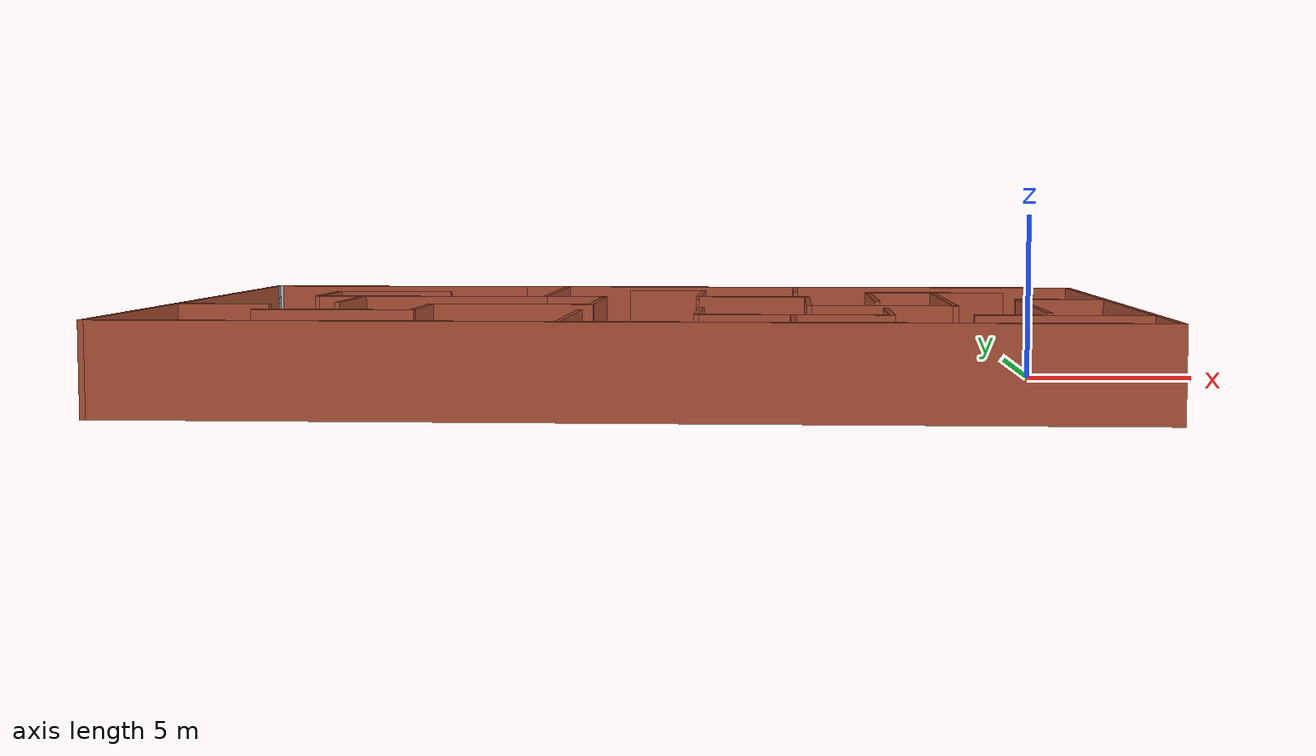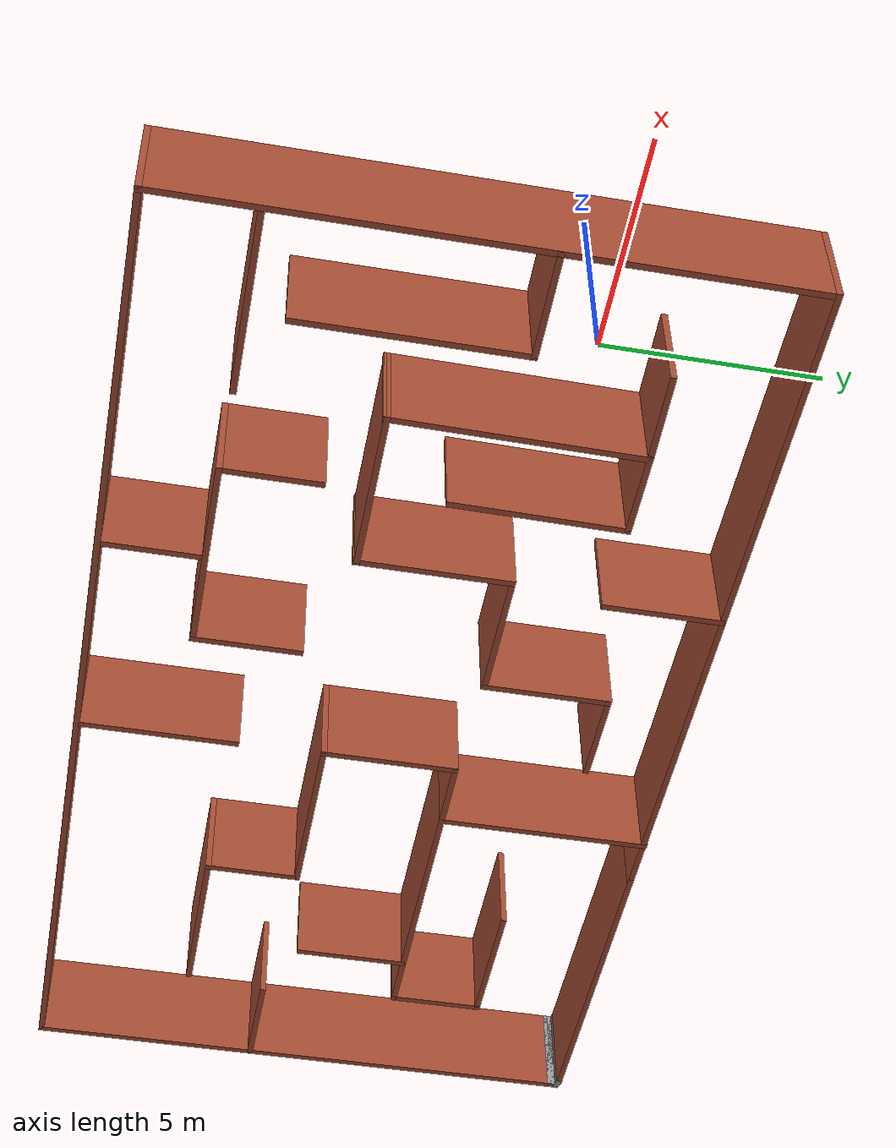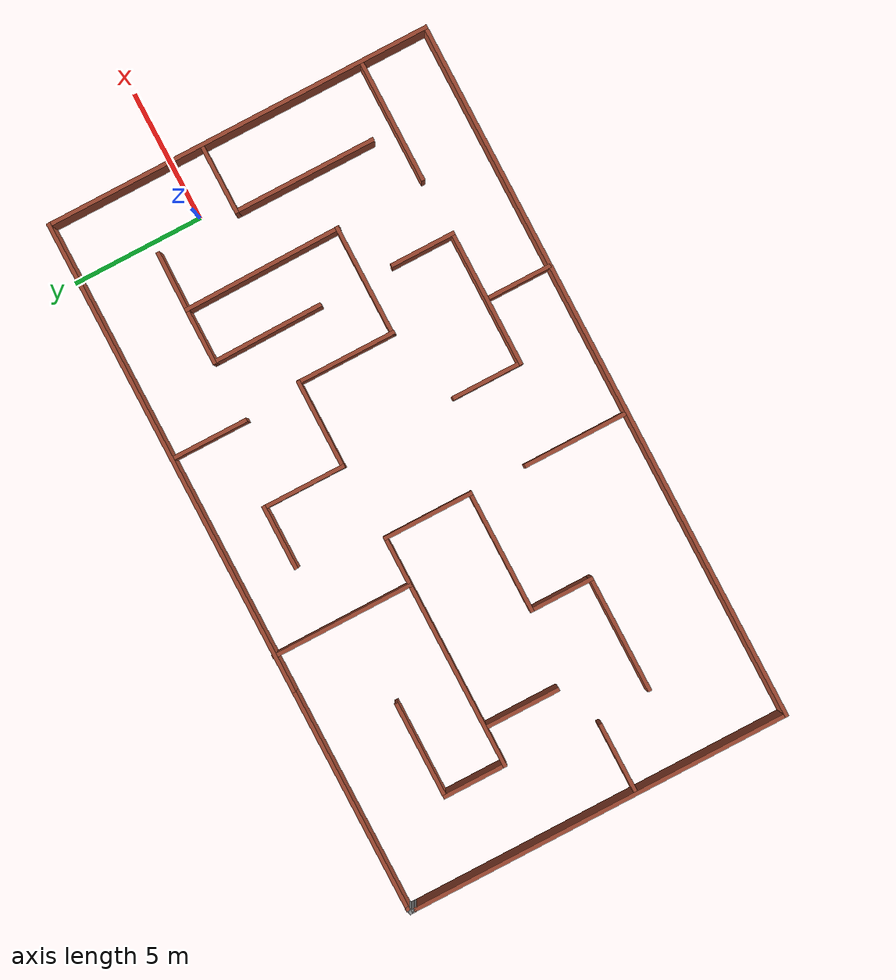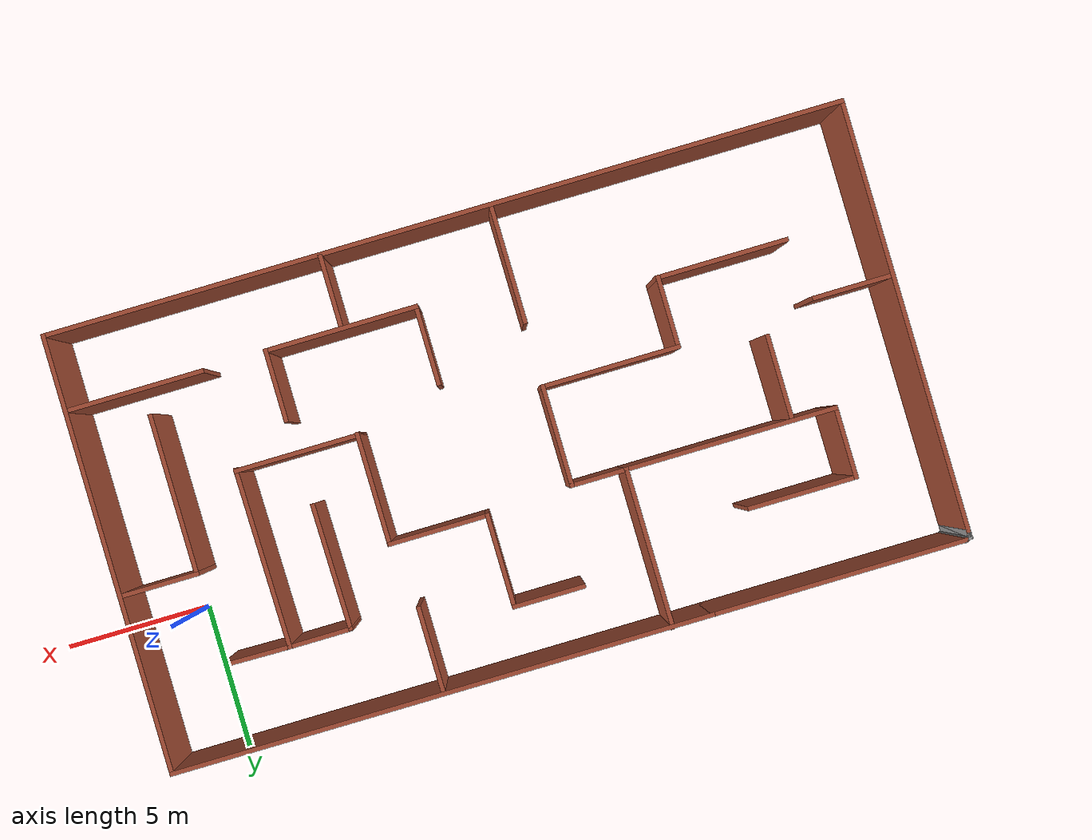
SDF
<?xml version='1.0'?>
<sdf version='1.6'>
  <model name='maze'>
    <pose frame=''>-11.5013 -2.67349 0 0 -0 0</pose>
    <link name='Wall_0'>
      <collision name='Wall_0_Collision'>
        <geometry>
          <box>
            <size>18.5 0.15 2.5</size>
          </box>
        </geometry>
        <pose frame=''>0 0 1.25 0 -0 0</pose>
      </collision>
      <visual name='Wall_0_Visual'>
        <pose frame=''>0 0 1.25 0 -0 0</pose>
        <geometry>
          <box>
            <size>18.5 0.15 2.5</size>
          </box>
        </geometry>
        <material>
          <script>
            <uri>file://media/materials/scripts/gazebo.material</uri>
            <name>Gazebo/Bricks</name>
          </script>
          <ambient>1 1 1 1</ambient>
        </material>
        <meta>
          <layer>0</layer>
        </meta>
      </visual>
      <pose frame=''>4.38493 7.41404 0 0 -0 0</pose>
    </link>
    <link name='Wall_1'>
      <collision name='Wall_1_Collision'>
        <geometry>
          <box>
            <size>15 0.15 2.5</size>
          </box>
        </geometry>
        <pose frame=''>0 0 1.25 0 -0 0</pose>
      </collision>
      <visual name='Wall_1_Visual'>
        <pose frame=''>0 0 1.25 0 -0 0</pose>
        <geometry>
          <box>
            <size>15 0.15 2.5</size>
          </box>
        </geometry>
        <material>
          <script>
            <uri>file://media/materials/scripts/gazebo.material</uri>
            <name>Gazebo/Bricks</name>
          </script>
          <ambient>1 1 1 1</ambient>
        </material>
        <meta>
          <layer>0</layer>
        </meta>
      </visual>
      <pose frame=''>13.5599 -0.010963 0 0 -0 -1.5708</pose>
    </link>
    <link name='Wall_101'>
      <collision name='Wall_101_Collision'>
        <geometry>
          <box>
            <size>2.75 0.15 2.5</size>
          </box>
        </geometry>
        <pose frame=''>0 0 1.25 0 -0 0</pose>
      </collision>
      <visual name='Wall_101_Visual'>
        <pose frame=''>0 0 1.25 0 -0 0</pose>
        <geometry>
          <box>
            <size>2.75 0.15 2.5</size>
          </box>
        </geometry>
        <material>
          <script>
            <uri>file://media/materials/scripts/gazebo.material</uri>
            <name>Gazebo/Bricks</name>
          </script>
          <ambient>1 1 1 1</ambient>
        </material>
        <meta>
          <layer>0</layer>
        </meta>
      </visual>
      <pose frame=''>12.2478 1.40189 0 0 -0 3.14159</pose>
    </link>
    <link name='Wall_102'>
      <collision name='Wall_102_Collision'>
        <geometry>
          <box>
            <size>5.5 0.15 2.5</size>
          </box>
        </geometry>
        <pose frame=''>0 0 1.25 0 -0 0</pose>
      </collision>
      <visual name='Wall_102_Visual'>
        <pose frame=''>0 0 1.25 0 -0 0</pose>
        <geometry>
          <box>
            <size>5.5 0.15 2.5</size>
          </box>
        </geometry>
        <material>
          <script>
            <uri>file://media/materials/scripts/gazebo.material</uri>
            <name>Gazebo/Bricks</name>
          </script>
          <ambient>1 1 1 1</ambient>
        </material>
        <meta>
          <layer>0</layer>
        </meta>
      </visual>
      <pose frame=''>10.9478 -1.27311 0 0 -0 -1.5708</pose>
    </link>
    <link name='Wall_104'>
      <collision name='Wall_104_Collision'>
        <geometry>
          <box>
            <size>2.5 0.15 2.5</size>
          </box>
        </geometry>
        <pose frame=''>0 0 1.25 0 -0 0</pose>
      </collision>
      <visual name='Wall_104_Visual'>
        <pose frame=''>0 0 1.25 0 -0 0</pose>
        <geometry>
          <box>
            <size>2.5 0.15 2.5</size>
          </box>
        </geometry>
        <material>
          <script>
            <uri>file://media/materials/scripts/gazebo.material</uri>
            <name>Gazebo/Bricks</name>
          </script>
          <ambient>1 1 1 1</ambient>
        </material>
        <meta>
          <layer>0</layer>
        </meta>
      </visual>
      <pose frame=''>6.74946 -3.7556 0 0 -0 -1.5708</pose>
    </link>
    <link name='Wall_105'>
      <collision name='Wall_105_Collision'>
        <geometry>
          <box>
            <size>5.25 0.15 2.5</size>
          </box>
        </geometry>
        <pose frame=''>0 0 1.25 0 -0 0</pose>
      </collision>
      <visual name='Wall_105_Visual'>
        <pose frame=''>0 0 1.25 0 -0 0</pose>
        <geometry>
          <box>
            <size>5.25 0.15 2.5</size>
          </box>
        </geometry>
        <material>
          <script>
            <uri>file://media/materials/scripts/gazebo.material</uri>
            <name>Gazebo/Bricks</name>
          </script>
          <ambient>1 1 1 1</ambient>
        </material>
        <meta>
          <layer>0</layer>
        </meta>
      </visual>
      <pose frame=''>4.19946 -4.9306 0 0 -0 3.14159</pose>
    </link>
    <link name='Wall_106'>
      <collision name='Wall_106_Collision'>
        <geometry>
          <box>
            <size>2.75 0.15 2.5</size>
          </box>
        </geometry>
        <pose frame=''>0 0 1.25 0 -0 0</pose>
      </collision>
      <visual name='Wall_106_Visual'>
        <pose frame=''>0 0 1.25 0 -0 0</pose>
        <geometry>
          <box>
            <size>2.75 0.15 2.5</size>
          </box>
        </geometry>
        <material>
          <script>
            <uri>file://media/materials/scripts/gazebo.material</uri>
            <name>Gazebo/Bricks</name>
          </script>
          <ambient>1 1 1 1</ambient>
        </material>
        <meta>
          <layer>0</layer>
        </meta>
      </visual>
      <pose frame=''>1.64946 -3.6306 0 0 -0 1.5708</pose>
    </link>
    <link name='Wall_108'>
      <collision name='Wall_108_Collision'>
        <geometry>
          <box>
            <size>2.5 0.15 2.5</size>
          </box>
        </geometry>
        <pose frame=''>0 0 1.25 0 -0 0</pose>
      </collision>
      <visual name='Wall_108_Visual'>
        <pose frame=''>0 0 1.25 0 -0 0</pose>
        <geometry>
          <box>
            <size>2.5 0.15 2.5</size>
          </box>
        </geometry>
        <material>
          <script>
            <uri>file://media/materials/scripts/gazebo.material</uri>
            <name>Gazebo/Bricks</name>
          </script>
          <ambient>1 1 1 1</ambient>
        </material>
        <meta>
          <layer>0</layer>
        </meta>
      </visual>
      <pose frame=''>4.17492 -6.18854 0 0 -0 -1.5708</pose>
    </link>
    <link name='Wall_110'>
      <collision name='Wall_110_Collision'>
        <geometry>
          <box>
            <size>4.75 0.15 2.5</size>
          </box>
        </geometry>
        <pose frame=''>0 0 1.25 0 -0 0</pose>
      </collision>
      <visual name='Wall_110_Visual'>
        <pose frame=''>0 0 1.25 0 -0 0</pose>
        <geometry>
          <box>
            <size>4.75 0.15 2.5</size>
          </box>
        </geometry>
        <material>
          <script>
            <uri>file://media/materials/scripts/gazebo.material</uri>
            <name>Gazebo/Bricks</name>
          </script>
          <ambient>1 1 1 1</ambient>
        </material>
        <meta>
          <layer>0</layer>
        </meta>
      </visual>
      <pose frame=''>11.2365 -4.88588 0 0 -0 3.14159</pose>
    </link>
    <link name='Wall_2'>
      <collision name='Wall_2_Collision'>
        <geometry>
          <box>
            <size>27.25 0.15 2.5</size>
          </box>
        </geometry>
        <pose frame=''>0 0 1.25 0 -0 0</pose>
      </collision>
      <visual name='Wall_2_Visual'>
        <pose frame=''>0 0 1.25 0 -0 0</pose>
        <geometry>
          <box>
            <size>27.25 0.15 2.5</size>
          </box>
        </geometry>
        <material>
          <script>
            <uri>file://media/materials/scripts/gazebo.material</uri>
            <name>Gazebo/Bricks</name>
          </script>
          <ambient>1 1 1 1</ambient>
        </material>
        <meta>
          <layer>0</layer>
        </meta>
      </visual>
      <pose frame=''>0.009934 -7.43596 0 0 -0 3.14159</pose>
    </link>
    <link name='Wall_3'>
      <collision name='Wall_3_Collision'>
        <geometry>
          <box>
            <size>14.75 0.15 2.5</size>
          </box>
        </geometry>
        <pose frame=''>0 0 1.25 0 -0 0</pose>
      </collision>
      <visual name='Wall_3_Visual'>
        <pose frame=''>0 0 1.25 0 -0 0</pose>
        <geometry>
          <box>
            <size>14.75 0.15 2.5</size>
          </box>
        </geometry>
        <material>
          <script>
            <uri>file://media/materials/scripts/gazebo.material</uri>
            <name>Gazebo/Bricks</name>
          </script>
          <ambient>1 1 1 1</ambient>
        </material>
        <meta>
          <layer>0</layer>
        </meta>
      </visual>
      <pose frame=''>-13.5401 -0.135963 0 0 -0 1.5708</pose>
    </link>
    <link name='Wall_4'>
      <collision name='Wall_4_Collision'>
        <geometry>
          <box>
            <size>0.25 0.15 2.5</size>
          </box>
        </geometry>
        <pose frame=''>0 0 1.25 0 -0 0</pose>
      </collision>
      <visual name='Wall_4_Visual'>
        <pose frame=''>0 0 1.25 0 -0 0</pose>
        <geometry>
          <box>
            <size>0.25 0.15 2.5</size>
          </box>
        </geometry>
        <material>
          <script>
            <uri>file://media/materials/scripts/gazebo.material</uri>
            <name>Gazebo/Grey</name>
          </script>
          <ambient>1 1 1 1</ambient>
        </material>
        <meta>
          <layer>0</layer>
        </meta>
      </visual>
      <pose frame=''>-13.5401 7.21404 0 0 -0 1.5708</pose>
    </link>
    <link name='Wall_5'>
      <collision name='Wall_5_Collision'>
        <geometry>
          <box>
            <size>0.25 0.15 2.5</size>
          </box>
        </geometry>
        <pose frame=''>0 0 1.25 0 -0 0</pose>
      </collision>
      <visual name='Wall_5_Visual'>
        <pose frame=''>0 0 1.25 0 -0 0</pose>
        <geometry>
          <box>
            <size>0.25 0.15 2.5</size>
          </box>
        </geometry>
        <material>
          <script>
            <uri>file://media/materials/scripts/gazebo.material</uri>
            <name>Gazebo/Grey</name>
          </script>
          <ambient>1 1 1 1</ambient>
        </material>
        <meta>
          <layer>0</layer>
        </meta>
      </visual>
      <pose frame=''>-13.5401 7.21404 0 0 -0 -1.5708</pose>
    </link>
    <link name='Wall_6'>
      <collision name='Wall_6_Collision'>
        <geometry>
          <box>
            <size>0.25 0.15 2.5</size>
          </box>
        </geometry>
        <pose frame=''>0 0 1.25 0 -0 0</pose>
      </collision>
      <visual name='Wall_6_Visual'>
        <pose frame=''>0 0 1.25 0 -0 0</pose>
        <geometry>
          <box>
            <size>0.25 0.15 2.5</size>
          </box>
        </geometry>
        <material>
          <script>
            <uri>file://media/materials/scripts/gazebo.material</uri>
            <name>Gazebo/Grey</name>
          </script>
          <ambient>1 1 1 1</ambient>
        </material>
        <meta>
          <layer>0</layer>
        </meta>
      </visual>
      <pose frame=''>-13.5401 7.21404 0 0 -0 1.5708</pose>
    </link>
    <link name='Wall_7'>
      <collision name='Wall_7_Collision'>
        <geometry>
          <box>
            <size>0.25 0.15 2.5</size>
          </box>
        </geometry>
        <pose frame=''>0 0 1.25 0 -0 0</pose>
      </collision>
      <visual name='Wall_7_Visual'>
        <pose frame=''>0 0 1.25 0 -0 0</pose>
        <geometry>
          <box>
            <size>0.25 0.15 2.5</size>
          </box>
        </geometry>
        <material>
          <script>
            <uri>file://media/materials/scripts/gazebo.material</uri>
            <name>Gazebo/Grey</name>
          </script>
          <ambient>1 1 1 1</ambient>
        </material>
        <meta>
          <layer>0</layer>
        </meta>
      </visual>
      <pose frame=''>-13.5401 7.31404 0 0 -0 1.5708</pose>
    </link>
    <link name='Wall_71'>
      <collision name='Wall_71_Collision'>
        <geometry>
          <box>
            <size>5.5 0.15 2.5</size>
          </box>
        </geometry>
        <pose frame=''>0 0 1.25 0 -0 0</pose>
      </collision>
      <visual name='Wall_71_Visual'>
        <pose frame=''>0 0 1.25 0 -0 0</pose>
        <geometry>
          <box>
            <size>5.5 0.15 2.5</size>
          </box>
        </geometry>
        <material>
          <script>
            <uri>file://media/materials/scripts/gazebo.material</uri>
            <name>Gazebo/Bricks</name>
          </script>
          <ambient>1 1 1 1</ambient>
        </material>
        <meta>
          <layer>0</layer>
        </meta>
      </visual>
      <pose frame=''>-3.42801 4.76096 0 0 -0 -1.5708</pose>
    </link>
    <link name='Wall_72'>
      <collision name='Wall_72_Collision'>
        <geometry>
          <box>
            <size>7.25 0.15 2.5</size>
          </box>
        </geometry>
        <pose frame=''>0 0 1.25 0 -0 0</pose>
      </collision>
      <visual name='Wall_72_Visual'>
        <pose frame=''>0 0 1.25 0 -0 0</pose>
        <geometry>
          <box>
            <size>7.25 0.15 2.5</size>
          </box>
        </geometry>
        <material>
          <script>
            <uri>file://media/materials/scripts/gazebo.material</uri>
            <name>Gazebo/Bricks</name>
          </script>
          <ambient>1 1 1 1</ambient>
        </material>
        <meta>
          <layer>0</layer>
        </meta>
      </visual>
      <pose frame=''>-6.97801 2.08596 0 0 -0 3.14159</pose>
    </link>
    <link name='Wall_73'>
      <collision name='Wall_73_Collision'>
        <geometry>
          <box>
            <size>2.5 0.15 2.5</size>
          </box>
        </geometry>
        <pose frame=''>0 0 1.25 0 -0 0</pose>
      </collision>
      <visual name='Wall_73_Visual'>
        <pose frame=''>0 0 1.25 0 -0 0</pose>
        <geometry>
          <box>
            <size>2.5 0.15 2.5</size>
          </box>
        </geometry>
        <material>
          <script>
            <uri>file://media/materials/scripts/gazebo.material</uri>
            <name>Gazebo/Bricks</name>
          </script>
          <ambient>1 1 1 1</ambient>
        </material>
        <meta>
          <layer>0</layer>
        </meta>
      </visual>
      <pose frame=''>-10.528 3.26096 0 0 -0 1.5708</pose>
    </link>
    <link name='Wall_74'>
      <collision name='Wall_74_Collision'>
        <geometry>
          <box>
            <size>3.75 0.15 2.5</size>
          </box>
        </geometry>
        <pose frame=''>0 0 1.25 0 -0 0</pose>
      </collision>
      <visual name='Wall_74_Visual'>
        <pose frame=''>0 0 1.25 0 -0 0</pose>
        <geometry>
          <box>
            <size>3.75 0.15 2.5</size>
          </box>
        </geometry>
        <material>
          <script>
            <uri>file://media/materials/scripts/gazebo.material</uri>
            <name>Gazebo/Bricks</name>
          </script>
          <ambient>1 1 1 1</ambient>
        </material>
        <meta>
          <layer>0</layer>
        </meta>
      </visual>
      <pose frame=''>-8.72801 4.43596 0 0 -0 0</pose>
    </link>
    <link name='Wall_76'>
      <collision name='Wall_76_Collision'>
        <geometry>
          <box>
            <size>2 0.15 2.5</size>
          </box>
        </geometry>
        <pose frame=''>0 0 1.25 0 -0 0</pose>
      </collision>
      <visual name='Wall_76_Visual'>
        <pose frame=''>0 0 1.25 0 -0 0</pose>
        <geometry>
          <box>
            <size>2 0.15 2.5</size>
          </box>
        </geometry>
        <material>
          <script>
            <uri>file://media/materials/scripts/gazebo.material</uri>
            <name>Gazebo/Bricks</name>
          </script>
          <ambient>1 1 1 1</ambient>
        </material>
        <meta>
          <layer>0</layer>
        </meta>
      </visual>
      <pose frame=''>-2.50301 2.08596 0 0 -0 0</pose>
    </link>
    <link name='Wall_77'>
      <collision name='Wall_77_Collision'>
        <geometry>
          <box>
            <size>3.5 0.15 2.5</size>
          </box>
        </geometry>
        <pose frame=''>0 0 1.25 0 -0 0</pose>
      </collision>
      <visual name='Wall_77_Visual'>
        <pose frame=''>0 0 1.25 0 -0 0</pose>
        <geometry>
          <box>
            <size>3.5 0.15 2.5</size>
          </box>
        </geometry>
        <material>
          <script>
            <uri>file://media/materials/scripts/gazebo.material</uri>
            <name>Gazebo/Bricks</name>
          </script>
          <ambient>1 1 1 1</ambient>
        </material>
        <meta>
          <layer>0</layer>
        </meta>
      </visual>
      <pose frame=''>-1.57801 0.410964 0 0 -0 -1.5708</pose>
    </link>
    <link name='Wall_78'>
      <collision name='Wall_78_Collision'>
        <geometry>
          <box>
            <size>4.75 0.15 2.5</size>
          </box>
        </geometry>
        <pose frame=''>0 0 1.25 0 -0 0</pose>
      </collision>
      <visual name='Wall_78_Visual'>
        <pose frame=''>0 0 1.25 0 -0 0</pose>
        <geometry>
          <box>
            <size>4.75 0.15 2.5</size>
          </box>
        </geometry>
        <material>
          <script>
            <uri>file://media/materials/scripts/gazebo.material</uri>
            <name>Gazebo/Bricks</name>
          </script>
          <ambient>1 1 1 1</ambient>
        </material>
        <meta>
          <layer>0</layer>
        </meta>
      </visual>
      <pose frame=''>-3.87801 -1.26404 0 0 -0 3.14159</pose>
    </link>
    <link name='Wall_79'>
      <collision name='Wall_79_Collision'>
        <geometry>
          <box>
            <size>2.5 0.15 2.5</size>
          </box>
        </geometry>
        <pose frame=''>0 0 1.25 0 -0 0</pose>
      </collision>
      <visual name='Wall_79_Visual'>
        <pose frame=''>0 0 1.25 0 -0 0</pose>
        <geometry>
          <box>
            <size>2.5 0.15 2.5</size>
          </box>
        </geometry>
        <material>
          <script>
            <uri>file://media/materials/scripts/gazebo.material</uri>
            <name>Gazebo/Bricks</name>
          </script>
          <ambient>1 1 1 1</ambient>
        </material>
        <meta>
          <layer>0</layer>
        </meta>
      </visual>
      <pose frame=''>-6.17801 -2.43904 0 0 -0 -1.5708</pose>
    </link>
    <link name='Wall_8'>
      <collision name='Wall_8_Collision'>
        <geometry>
          <box>
            <size>0.308114 0.15 2.5</size>
          </box>
        </geometry>
        <pose frame=''>0 0 1.25 0 -0 0</pose>
      </collision>
      <visual name='Wall_8_Visual'>
        <pose frame=''>0 0 1.25 0 -0 0</pose>
        <geometry>
          <box>
            <size>0.308114 0.15 2.5</size>
          </box>
        </geometry>
        <material>
          <script>
            <uri>file://media/materials/scripts/gazebo.material</uri>
            <name>Gazebo/Grey</name>
          </script>
          <ambient>1 1 1 1</ambient>
        </material>
        <meta>
          <layer>0</layer>
        </meta>
      </visual>
      <pose frame=''>-13.4651 7.38904 0 0 -0 0.321751</pose>
    </link>
    <link name='Wall_80'>
      <collision name='Wall_80_Collision'>
        <geometry>
          <box>
            <size>4.5 0.15 2.5</size>
          </box>
        </geometry>
        <pose frame=''>0 0 1.25 0 -0 0</pose>
      </collision>
      <visual name='Wall_80_Visual'>
        <pose frame=''>0 0 1.25 0 -0 0</pose>
        <geometry>
          <box>
            <size>4.5 0.15 2.5</size>
          </box>
        </geometry>
        <material>
          <script>
            <uri>file://media/materials/scripts/gazebo.material</uri>
            <name>Gazebo/Bricks</name>
          </script>
          <ambient>1 1 1 1</ambient>
        </material>
        <meta>
          <layer>0</layer>
        </meta>
      </visual>
      <pose frame=''>-8.35301 -3.61404 0 0 -0 3.14159</pose>
    </link>
    <link name='Wall_82'>
      <collision name='Wall_82_Collision'>
        <geometry>
          <box>
            <size>3 0.15 2.5</size>
          </box>
        </geometry>
        <pose frame=''>0 0 1.25 0 -0 0</pose>
      </collision>
      <visual name='Wall_82_Visual'>
        <pose frame=''>0 0 1.25 0 -0 0</pose>
        <geometry>
          <box>
            <size>3 0.15 2.5</size>
          </box>
        </geometry>
        <material>
          <script>
            <uri>file://media/materials/scripts/gazebo.material</uri>
            <name>Gazebo/Bricks</name>
          </script>
          <ambient>1 1 1 1</ambient>
        </material>
        <meta>
          <layer>0</layer>
        </meta>
      </visual>
      <pose frame=''>-9.05981 0.660753 0 0 -0 -1.5708</pose>
    </link>
    <link name='Wall_84'>
      <collision name='Wall_84_Collision'>
        <geometry>
          <box>
            <size>2.75 0.15 2.5</size>
          </box>
        </geometry>
        <pose frame=''>0 0 1.25 0 -0 0</pose>
      </collision>
      <visual name='Wall_84_Visual'>
        <pose frame=''>0 0 1.25 0 -0 0</pose>
        <geometry>
          <box>
            <size>2.75 0.15 2.5</size>
          </box>
        </geometry>
        <material>
          <script>
            <uri>file://media/materials/scripts/gazebo.material</uri>
            <name>Gazebo/Bricks</name>
          </script>
          <ambient>1 1 1 1</ambient>
        </material>
        <meta>
          <layer>0</layer>
        </meta>
      </visual>
      <pose frame=''>-12.1767 -1.53469 0 0 -0 0</pose>
    </link>
    <link name='Wall_86'>
      <collision name='Wall_86_Collision'>
        <geometry>
          <box>
            <size>4 0.15 2.5</size>
          </box>
        </geometry>
        <pose frame=''>0 0 1.25 0 -0 0</pose>
      </collision>
      <visual name='Wall_86_Visual'>
        <pose frame=''>0 0 1.25 0 -0 0</pose>
        <geometry>
          <box>
            <size>4 0.15 2.5</size>
          </box>
        </geometry>
        <material>
          <script>
            <uri>file://media/materials/scripts/gazebo.material</uri>
            <name>Gazebo/Bricks</name>
          </script>
          <ambient>1 1 1 1</ambient>
        </material>
        <meta>
          <layer>0</layer>
        </meta>
      </visual>
      <pose frame=''>-1.61779 -5.39059 0 0 -0 -1.5708</pose>
    </link>
    <link name='Wall_88'>
      <collision name='Wall_88_Collision'>
        <geometry>
          <box>
            <size>3 0.15 2.5</size>
          </box>
        </geometry>
        <pose frame=''>0 0 1.25 0 -0 0</pose>
      </collision>
      <visual name='Wall_88_Visual'>
        <pose frame=''>0 0 1.25 0 -0 0</pose>
        <geometry>
          <box>
            <size>3 0.15 2.5</size>
          </box>
        </geometry>
        <material>
          <script>
            <uri>file://media/materials/scripts/gazebo.material</uri>
            <name>Gazebo/Bricks</name>
          </script>
          <ambient>1 1 1 1</ambient>
        </material>
        <meta>
          <layer>0</layer>
        </meta>
      </visual>
      <pose frame=''>4.33583 5.95096 0 0 -0 -1.5708</pose>
    </link>
    <link name='Wall_9'>
      <collision name='Wall_9_Collision'>
        <geometry>
          <box>
            <size>8.75 0.15 2.5</size>
          </box>
        </geometry>
        <pose frame=''>0 0 1.25 0 -0 0</pose>
      </collision>
      <visual name='Wall_9_Visual'>
        <pose frame=''>0 0 1.25 0 -0 0</pose>
        <geometry>
          <box>
            <size>8.75 0.15 2.5</size>
          </box>
        </geometry>
        <material>
          <script>
            <uri>file://media/materials/scripts/gazebo.material</uri>
            <name>Gazebo/Bricks</name>
          </script>
          <ambient>1 1 1 1</ambient>
        </material>
        <meta>
          <layer>0</layer>
        </meta>
      </visual>
      <pose frame=''>-9.09007 7.41404 0 0 -0 0</pose>
    </link>
    <link name='Wall_90'>
      <collision name='Wall_90_Collision'>
        <geometry>
          <box>
            <size>2.5 0.15 2.5</size>
          </box>
        </geometry>
        <pose frame=''>0 0 1.25 0 -0 0</pose>
      </collision>
      <visual name='Wall_90_Visual'>
        <pose frame=''>0 0 1.25 0 -0 0</pose>
        <geometry>
          <box>
            <size>2.5 0.15 2.5</size>
          </box>
        </geometry>
        <material>
          <script>
            <uri>file://media/materials/scripts/gazebo.material</uri>
            <name>Gazebo/Bricks</name>
          </script>
          <ambient>1 1 1 1</ambient>
        </material>
        <meta>
          <layer>0</layer>
        </meta>
      </visual>
      <pose frame=''>0.16062 5.34415 0 0 -0 0</pose>
    </link>
    <link name='Wall_91'>
      <collision name='Wall_91_Collision'>
        <geometry>
          <box>
            <size>3.25 0.15 2.5</size>
          </box>
        </geometry>
        <pose frame=''>0 0 1.25 0 -0 0</pose>
      </collision>
      <visual name='Wall_91_Visual'>
        <pose frame=''>0 0 1.25 0 -0 0</pose>
        <geometry>
          <box>
            <size>3.25 0.15 2.5</size>
          </box>
        </geometry>
        <material>
          <script>
            <uri>file://media/materials/scripts/gazebo.material</uri>
            <name>Gazebo/Bricks</name>
          </script>
          <ambient>1 1 1 1</ambient>
        </material>
        <meta>
          <layer>0</layer>
        </meta>
      </visual>
      <pose frame=''>1.33562 3.79415 0 0 -0 -1.5708</pose>
    </link>
    <link name='Wall_92'>
      <collision name='Wall_92_Collision'>
        <geometry>
          <box>
            <size>3.45227 0.15 2.5</size>
          </box>
        </geometry>
        <pose frame=''>0 0 1.25 0 -0 0</pose>
      </collision>
      <visual name='Wall_92_Visual'>
        <pose frame=''>0 0 1.25 0 -0 0</pose>
        <geometry>
          <box>
            <size>3.45227 0.15 2.5</size>
          </box>
        </geometry>
        <material>
          <script>
            <uri>file://media/materials/scripts/gazebo.material</uri>
            <name>Gazebo/Bricks</name>
          </script>
          <ambient>1 1 1 1</ambient>
        </material>
        <meta>
          <layer>0</layer>
        </meta>
      </visual>
      <pose frame=''>2.98676 2.24415 0 0 -0 0</pose>
    </link>
    <link name='Wall_93'>
      <collision name='Wall_93_Collision'>
        <geometry>
          <box>
            <size>3.87164 0.15 2.5</size>
          </box>
        </geometry>
        <pose frame=''>0 0 1.25 0 -0 0</pose>
      </collision>
      <visual name='Wall_93_Visual'>
        <pose frame=''>0 0 1.25 0 -0 0</pose>
        <geometry>
          <box>
            <size>3.87164 0.15 2.5</size>
          </box>
        </geometry>
        <material>
          <script>
            <uri>file://media/materials/scripts/gazebo.material</uri>
            <name>Gazebo/Bricks</name>
          </script>
          <ambient>1 1 1 1</ambient>
        </material>
        <meta>
          <layer>0</layer>
        </meta>
      </visual>
      <pose frame=''>4.65588 0.383332 0 0 -0 -1.56968</pose>
    </link>
    <link name='Wall_94'>
      <collision name='Wall_94_Collision'>
        <geometry>
          <box>
            <size>4.2699 0.15 2.5</size>
          </box>
        </geometry>
        <pose frame=''>0 0 1.25 0 -0 0</pose>
      </collision>
      <visual name='Wall_94_Visual'>
        <pose frame=''>0 0 1.25 0 -0 0</pose>
        <geometry>
          <box>
            <size>4.2699 0.15 2.5</size>
          </box>
        </geometry>
        <material>
          <script>
            <uri>file://media/materials/scripts/gazebo.material</uri>
            <name>Gazebo/Bricks</name>
          </script>
          <ambient>1 1 1 1</ambient>
        </material>
        <meta>
          <layer>0</layer>
        </meta>
      </visual>
      <pose frame=''>6.71791 -1.45343 0 0 -0 0</pose>
    </link>
    <link name='Wall_95'>
      <collision name='Wall_95_Collision'>
        <geometry>
          <box>
            <size>6.1588 0.15 2.5</size>
          </box>
        </geometry>
        <pose frame=''>0 0 1.25 0 -0 0</pose>
      </collision>
      <visual name='Wall_95_Visual'>
        <pose frame=''>0 0 1.25 0 -0 0</pose>
        <geometry>
          <box>
            <size>6.1588 0.15 2.5</size>
          </box>
        </geometry>
        <material>
          <script>
            <uri>file://media/materials/scripts/gazebo.material</uri>
            <name>Gazebo/Bricks</name>
          </script>
          <ambient>1 1 1 1</ambient>
        </material>
        <meta>
          <layer>0</layer>
        </meta>
      </visual>
      <pose frame=''>8.74494 1.52673 0 0 -0 1.58175</pose>
    </link>
    <link name='Wall_96'>
      <collision name='Wall_96_Collision'>
        <geometry>
          <box>
            <size>2.32391 0.15 2.5</size>
          </box>
        </geometry>
        <pose frame=''>0 0 1.25 0 -0 0</pose>
      </collision>
      <visual name='Wall_96_Visual'>
        <pose frame=''>0 0 1.25 0 -0 0</pose>
        <geometry>
          <box>
            <size>2.32391 0.15 2.5</size>
          </box>
        </geometry>
        <material>
          <script>
            <uri>file://media/materials/scripts/gazebo.material</uri>
            <name>Gazebo/Bricks</name>
          </script>
          <ambient>1 1 1 1</ambient>
        </material>
        <meta>
          <layer>0</layer>
        </meta>
      </visual>
      <pose frame=''>9.79882 4.51255 0 0 -0 -0.016929</pose>
    </link>
    <link name='Wall_98'>
      <collision name='Wall_98_Collision'>
        <geometry>
          <box>
            <size>2.25 0.15 2.5</size>
          </box>
        </geometry>
        <pose frame=''>0 0 1.25 0 -0 0</pose>
      </collision>
      <visual name='Wall_98_Visual'>
        <pose frame=''>0 0 1.25 0 -0 0</pose>
        <geometry>
          <box>
            <size>2.25 0.15 2.5</size>
          </box>
        </geometry>
        <material>
          <script>
            <uri>file://media/materials/scripts/gazebo.material</uri>
            <name>Gazebo/Bricks</name>
          </script>
          <ambient>1 1 1 1</ambient>
        </material>
        <meta>
          <layer>0</layer>
        </meta>
      </visual>
      <pose frame=''>7.69882 4.53095 0 0 -0 3.14159</pose>
    </link>
    <link name='Wall_99'>
      <collision name='Wall_99_Collision'>
        <geometry>
          <box>
            <size>4.33409 0.15 2.5</size>
          </box>
        </geometry>
        <pose frame=''>0 0 1.25 0 -0 0</pose>
      </collision>
      <visual name='Wall_99_Visual'>
        <pose frame=''>0 0 1.25 0 -0 0</pose>
        <geometry>
          <box>
            <size>4.33409 0.15 2.5</size>
          </box>
        </geometry>
        <material>
          <script>
            <uri>file://media/materials/scripts/gazebo.material</uri>
            <name>Gazebo/Bricks</name>
          </script>
          <ambient>1 1 1 1</ambient>
        </material>
        <meta>
          <layer>0</layer>
        </meta>
      </visual>
      <pose frame=''>6.67324 2.43905 0 0 -0 -1.55913</pose>
    </link>
    <static>1</static>
  </model>
</sdf>
